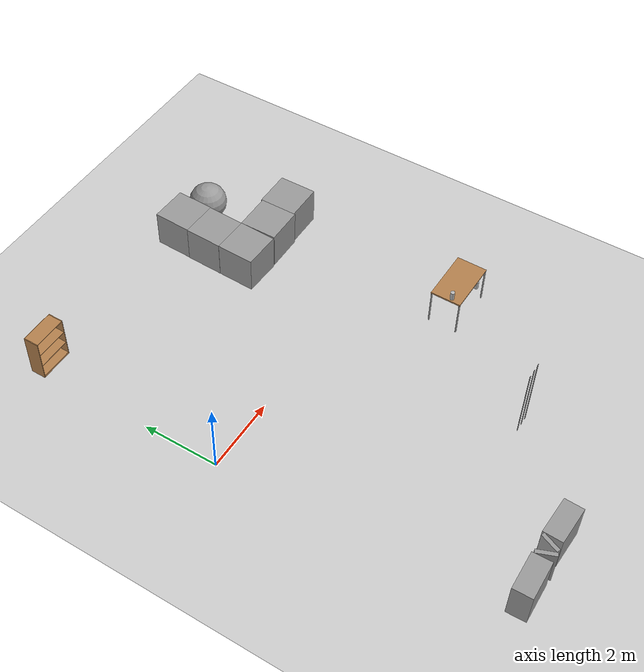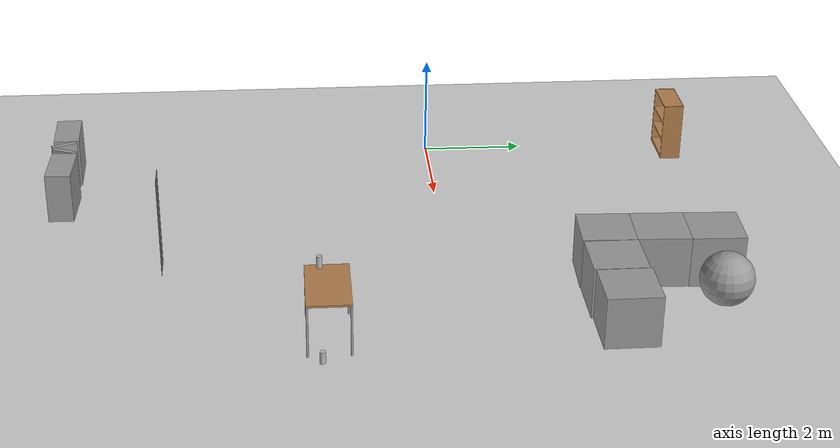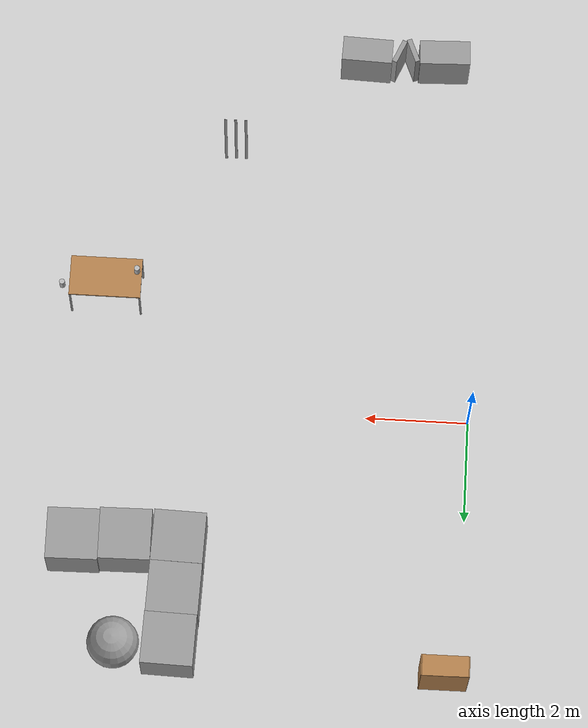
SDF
<sdf version="1.6">
 <world name="default">
  <model name="ground_plane">
   <static>1</static>
   <link name="link">
    <collision name="collision">
     <geometry><plane><normal>0 0 1</normal><size>100 100</size></plane></geometry>
     <surface><friction><ode><mu>100</mu><mu2>50</mu2></ode></friction></surface>
    </collision>
    <visual name="visual">
     <cast_shadows>0</cast_shadows>
     <geometry><plane><normal>0 0 1</normal><size>100 100</size></plane></geometry>
     <material>
      <script><uri>file://media/materials/scripts/gazebo.material</uri><name>Gazebo/Grey</name></script>
     </material>
    </visual>
   </link>
  </model>
  <model name="unit_box_0_2">
   <pose>5.46329 2.82899 0.499995 -1e-05 -0 -0.031279</pose>
   <link name="link">
    <inertial>
     <mass>1</mass>
     <inertia>
      <ixx>0.166667</ixx>
      <ixy>0</ixy>
      <ixz>0</ixz>
      <iyy>0.166667</iyy>
      <iyz>0</iyz>
      <izz>0.166667</izz>
     </inertia>
    </inertial>
    <collision name="collision"><geometry><box><size>1 1 1</size></box></geometry></collision>
    <visual name="visual">
     <geometry><box><size>1 1 1</size></box></geometry>
     <material>
      <script><name>Gazebo/Grey</name><uri>file://media/materials/scripts/gazebo.material</uri></script>
     </material>
    </visual>
   </link>
  </model>
  <model name="unit_box_0_3">
   <pose>5.53381 4.82824 0.499995 -1e-05 0 -0.032223</pose>
   <link name="link">
    <inertial>
     <mass>1</mass>
     <inertia>
      <ixx>0.166667</ixx>
      <ixy>0</ixy>
      <ixz>0</ixz>
      <iyy>0.166667</iyy>
      <iyz>0</iyz>
      <izz>0.166667</izz>
     </inertia>
    </inertial>
    <collision name="collision"><geometry><box><size>1 1 1</size></box></geometry></collision>
    <visual name="visual">
     <geometry><box><size>1 1 1</size></box></geometry>
     <material>
      <script><name>Gazebo/Grey</name><uri>file://media/materials/scripts/gazebo.material</uri></script>
     </material>
    </visual>
   </link>
  </model>
  <model name="unit_box_0_4">
   <pose>5.49328 3.82901 0.499995 1e-05 -0 -0.032214</pose>
   <link name="link">
    <inertial>
     <mass>1</mass>
     <inertia>
      <ixx>0.166667</ixx>
      <ixy>0</ixy>
      <ixz>0</ixz>
      <iyy>0.166667</iyy>
      <iyz>0</iyz>
      <izz>0.166667</izz>
     </inertia>
    </inertial>
    <collision name="collision"><geometry><box><size>1 1 1</size></box></geometry></collision>
    <visual name="visual">
     <geometry><box><size>1 1 1</size></box></geometry>
     <material>
      <script><name>Gazebo/Grey</name><uri>file://media/materials/scripts/gazebo.material</uri></script>
     </material>
    </visual>
   </link>
  </model>
  <model name="unit_box_0_5">
   <pose>6.48296 2.82872 0.5 0 -0 0.008783</pose>
   <link name="link">
    <inertial>
     <mass>1</mass>
     <inertia>
      <ixx>0.166667</ixx>
      <ixy>0</ixy>
      <ixz>0</ixz>
      <iyy>0.166667</iyy>
      <iyz>0</iyz>
      <izz>0.166667</izz>
     </inertia>
    </inertial>
    <collision name="collision"><geometry><box><size>1 1 1</size></box></geometry></collision>
    <visual name="visual">
     <geometry><box><size>1 1 1</size></box></geometry>
     <material>
      <script><name>Gazebo/Grey</name><uri>file://media/materials/scripts/gazebo.material</uri></script>
     </material>
    </visual>
   </link>
  </model>
  <model name="unit_box_0_6">
   <pose>7.48259 2.8746 0.494019 0.001468 0.000371 0.008756</pose>
   <link name="link">
    <inertial>
     <mass>1</mass>
     <inertia>
      <ixx>0.166667</ixx>
      <ixy>0</ixy>
      <ixz>0</ixz>
      <iyy>0.166667</iyy>
      <iyz>0</iyz>
      <izz>0.166667</izz>
     </inertia>
    </inertial>
    <collision name="collision"><geometry><box><size>1 1 1</size></box></geometry></collision>
    <visual name="visual">
     <geometry><box><size>1 1 1</size></box></geometry>
     <material>
      <script><name>Gazebo/Grey</name><uri>file://media/materials/scripts/gazebo.material</uri></script>
     </material>
    </visual>
   </link>
  </model>
  <model name="bookshelf_1_clone_1">
   <static>1</static>
   <link name="link">
    <inertial><mass>1</mass></inertial>
    <collision name="back">
     <pose>0 0.005 0.6 0 -0 0</pose>
     <geometry><box><size>0.9 0.01 1.2</size></box></geometry>
    </collision>
    <visual name="visual1">
     <pose>0 0.005 0.6 0 -0 0</pose>
     <geometry><box><size>0.9 0.01 1.2</size></box></geometry>
     <material>
      <script><uri>file://media/materials/scripts/gazebo.material</uri><name>Gazebo/Wood</name></script>
     </material>
    </visual>
    <collision name="left_side">
     <pose>0.45 -0.195 0.6 0 -0 0</pose>
     <geometry><box><size>0.02 0.4 1.2</size></box></geometry>
    </collision>
    <visual name="visual2">
     <pose>0.45 -0.195 0.6 0 -0 0</pose>
     <geometry><box><size>0.02 0.4 1.2</size></box></geometry>
     <material>
      <script><uri>file://media/materials/scripts/gazebo.material</uri><name>Gazebo/Wood</name></script>
     </material>
    </visual>
    <collision name="right_side">
     <pose>-0.45 -0.195 0.6 0 -0 0</pose>
     <geometry><box><size>0.02 0.4 1.2</size></box></geometry>
    </collision>
    <visual name="visual3">
     <pose>-0.45 -0.195 0.6 0 -0 0</pose>
     <geometry><box><size>0.02 0.4 1.2</size></box></geometry>
     <material>
      <script><uri>file://media/materials/scripts/gazebo.material</uri><name>Gazebo/Wood</name></script>
     </material>
    </visual>
    <collision name="bottom">
     <pose>0 -0.195 0.03 0 -0 0</pose>
     <geometry><box><size>0.88 0.4 0.06</size></box></geometry>
    </collision>
    <visual name="visual4">
     <pose>0 -0.195 0.03 0 -0 0</pose>
     <geometry><box><size>0.88 0.4 0.06</size></box></geometry>
     <material>
      <script><uri>file://media/materials/scripts/gazebo.material</uri><name>Gazebo/Wood</name></script>
     </material>
    </visual>
    <collision name="top">
     <pose>0 -0.195 1.19 0 -0 0</pose>
     <geometry><box><size>0.88 0.4 0.02</size></box></geometry>
    </collision>
    <visual name="visual5">
     <pose>0 -0.195 1.19 0 -0 0</pose>
     <geometry><box><size>0.88 0.4 0.02</size></box></geometry>
     <material>
      <script><uri>file://media/materials/scripts/gazebo.material</uri><name>Gazebo/Wood</name></script>
     </material>
    </visual>
    <collision name="low_shelf">
     <pose>0 -0.195 0.43 0 -0 0</pose>
     <geometry><box><size>0.88 0.4 0.02</size></box></geometry>
    </collision>
    <visual name="visual6">
     <pose>0 -0.195 0.43 0 -0 0</pose>
     <geometry><box><size>0.88 0.4 0.02</size></box></geometry>
     <material>
      <script><uri>file://media/materials/scripts/gazebo.material</uri><name>Gazebo/Wood</name></script>
     </material>
    </visual>
    <collision name="high_shelf">
     <pose>0 -0.195 0.8 0 -0 0</pose>
     <geometry><box><size>0.88 0.4 0.02</size></box></geometry>
    </collision>
    <visual name="visual7">
     <pose>0 -0.195 0.8 0 -0 0</pose>
     <geometry><box><size>0.88 0.4 0.02</size></box></geometry>
     <material>
      <script><uri>file://media/materials/scripts/gazebo.material</uri><name>Gazebo/Wood</name></script>
     </material>
    </visual>
   </link>
   <pose>0.313567 5.32284 0 0 -0 0</pose>
  </model>
  <model name="beer_clone_1">
   <link name="link">
    <pose>0 0 0.115 0 -0 0</pose>
    <inertial>
     <mass>0.39</mass>
     <inertia><ixx>0.00058</ixx><ixy>0</ixy><ixz>0</ixz><iyy>0.00058</iyy><iyz>0</iyz><izz>0.00019</izz></inertia>
    </inertial>
    <collision name="collision">
     <geometry><cylinder><radius>0.055</radius><length>0.23</length></cylinder></geometry>
    </collision>
    <visual name="visual">
     <geometry><cylinder><radius>0.055</radius><length>0.23</length></cylinder></geometry>
     <material>
      <script>
       <uri>model://beer/materials/scripts</uri>
       <uri>model://beer/materials/textures</uri>
       <name>Beer/Diffuse</name>
      </script>
     </material>
    </visual>
   </link>
   <pose>8.10942 -2.46184 0.230065 3.14088 0.000964 2.77717</pose>
  </model>
  <model name="beer_clone_2">
   <link name="link">
    <pose>0 0 0.115 0 -0 0</pose>
    <inertial>
     <mass>0.39</mass>
     <inertia><ixx>0.00058</ixx><ixy>0</ixy><ixz>0</ixz><iyy>0.00058</iyy><iyz>0</iyz><izz>0.00019</izz></inertia>
    </inertial>
    <collision name="collision">
     <geometry><cylinder><radius>0.055</radius><length>0.23</length></cylinder></geometry>
    </collision>
    <visual name="visual">
     <geometry><cylinder><radius>0.055</radius><length>0.23</length></cylinder></geometry>
     <material>
      <script>
       <uri>model://beer/materials/scripts</uri>
       <uri>model://beer/materials/textures</uri>
       <name>Beer/Diffuse</name>
      </script>
     </material>
    </visual>
   </link>
   <pose>6.58813 -2.4604 0.990994 -0.005496 -0.003168 1.25338</pose>
  </model>
  <model name="unit_sphere_0">
   <pose>6.60391 4.83797 0.5 0.012288 -0 0</pose>
   <link name="link">
    <inertial>
     <mass>1</mass>
     <inertia><ixx>0.1</ixx><ixy>0</ixy><ixz>0</ixz><iyy>0.1</iyy><iyz>0</iyz><izz>0.1</izz></inertia>
    </inertial>
    <collision name="collision"><geometry><sphere><radius>0.5</radius></sphere></geometry></collision>
    <visual name="visual">
     <geometry><sphere><radius>0.5</radius></sphere></geometry>
     <material>
      <script><name>Gazebo/Grey</name><uri>file://media/materials/scripts/gazebo.material</uri></script>
     </material>
    </visual>
   </link>
  </model>
  <model name="boxDaBox_clone">
   <link name="link">
    <inertial>
     <mass>1</mass>
     <inertia>
      <ixx>0.166667</ixx>
      <ixy>0</ixy>
      <ixz>0</ixz>
      <iyy>0.166667</iyy>
      <iyz>0</iyz>
      <izz>0.166667</izz>
     </inertia>
    </inertial>
    <visual name="visual">
     <geometry><box><size>0.0525 0.01 2</size></box></geometry>
     <material>
      <script><name>Gazebo/Grey</name><uri>file://media/materials/scripts/gazebo.material</uri></script>
      <ambient>0.3 0.3 0.3 1</ambient>
      <diffuse>0.7 0.7 0.7 1</diffuse>
      <specular>0.01 0.01 0.01 1</specular>
      <emissive>0 0 0 1</emissive>
      <shader type="vertex"><normal_map>__default__</normal_map></shader>
     </material>
    </visual>
    <collision name="collision">
     <laser_retro>1</laser_retro>
     <geometry><box><size>0.0525 0.01 2</size></box></geometry>
     <surface>
      <friction>
       <ode><mu>1</mu><mu2>1</mu2><fdir1>0 0 0</fdir1><slip1>0</slip1><slip2>0</slip2></ode>
       <torsional>
        <coefficient>1</coefficient>
        <patch_radius>0</patch_radius>
        <surface_radius>0</surface_radius>
        <use_patch_radius>1</use_patch_radius>
        <ode><slip>0</slip></ode>
       </torsional>
      </friction>
      <bounce><restitution_coefficient>0</restitution_coefficient><threshold>1e+06</threshold></bounce>
      <contact>
       <collide_without_contact>0</collide_without_contact>
       <collide_without_contact_bitmask>1</collide_without_contact_bitmask>
       <collide_bitmask>1</collide_bitmask>
       <ode>
        <soft_cfm>0</soft_cfm>
        <soft_erp>0.2</soft_erp>
        <kp>1e+13</kp>
        <kd>1</kd>
        <max_vel>0.01</max_vel>
        <min_depth>0</min_depth>
       </ode>
       <bullet>
        <split_impulse>1</split_impulse>
        <split_impulse_penetration_threshold>-0.01</split_impulse_penetration_threshold>
        <soft_cfm>0</soft_cfm>
        <soft_erp>0.2</soft_erp>
        <kp>1e+13</kp>
        <kd>1</kd>
       </bullet>
      </contact>
     </surface>
    </collision>
   </link>
   <static>0</static>
   <pose>5.01246 -5.34665 1 -2e-06 3e-06 -0.000638</pose>
  </model>
  <model name="boxDaBox_0_clone">
   <link name="link">
    <inertial>
     <mass>1</mass>
     <inertia>
      <ixx>0.166667</ixx>
      <ixy>0</ixy>
      <ixz>0</ixz>
      <iyy>0.166667</iyy>
      <iyz>0</iyz>
      <izz>0.166667</izz>
     </inertia>
    </inertial>
    <visual name="visual">
     <geometry><box><size>0.0525 0.01 2</size></box></geometry>
     <material>
      <script><name>Gazebo/Grey</name><uri>file://media/materials/scripts/gazebo.material</uri></script>
      <ambient>0.3 0.3 0.3 1</ambient>
      <diffuse>0.7 0.7 0.7 1</diffuse>
      <specular>0.01 0.01 0.01 1</specular>
      <emissive>0 0 0 1</emissive>
      <shader type="vertex"><normal_map>__default__</normal_map></shader>
     </material>
    </visual>
    <collision name="collision">
     <laser_retro>1</laser_retro>
     <geometry><box><size>0.0525 0.01 2</size></box></geometry>
     <surface>
      <friction>
       <ode><mu>1</mu><mu2>1</mu2><fdir1>0 0 0</fdir1><slip1>0</slip1><slip2>0</slip2></ode>
       <torsional>
        <coefficient>1</coefficient>
        <patch_radius>0</patch_radius>
        <surface_radius>0</surface_radius>
        <use_patch_radius>1</use_patch_radius>
        <ode><slip>0</slip></ode>
       </torsional>
      </friction>
      <bounce><restitution_coefficient>0</restitution_coefficient><threshold>1e+06</threshold></bounce>
      <contact>
       <collide_without_contact>0</collide_without_contact>
       <collide_without_contact_bitmask>1</collide_without_contact_bitmask>
       <collide_bitmask>1</collide_bitmask>
       <ode>
        <soft_cfm>0</soft_cfm>
        <soft_erp>0.2</soft_erp>
        <kp>1e+13</kp>
        <kd>1</kd>
        <max_vel>0.01</max_vel>
        <min_depth>0</min_depth>
       </ode>
       <bullet>
        <split_impulse>1</split_impulse>
        <split_impulse_penetration_threshold>-0.01</split_impulse_penetration_threshold>
        <soft_cfm>0</soft_cfm>
        <soft_erp>0.2</soft_erp>
        <kp>1e+13</kp>
        <kd>1</kd>
       </bullet>
      </contact>
     </surface>
    </collision>
   </link>
   <static>0</static>
   <pose>4.81245 -5.34998 1 -9e-06 -4e-06 -0.001365</pose>
  </model>
  <model name="table_0_0">
   <link name="link">
    <inertial>
     <inertia><ixx>1</ixx><ixy>0</ixy><ixz>0</ixz><iyy>1</iyy><iyz>0</iyz><izz>1</izz></inertia>
     <mass>1</mass>
    </inertial>
    <visual name="visual1">
     <pose>0 0 1 0 -0 0</pose>
     <geometry><box><size>1.4 0.8 0.04</size></box></geometry>
     <material>
      <script><uri>file://media/materials/scripts/gazebo.material</uri><name>Gazebo/Wood</name></script>
      <ambient>1 1 1 1</ambient>
      <diffuse>1 1 1 1</diffuse>
      <specular>0.2 0.2 0.2 1</specular>
      <emissive>0 0 0 1</emissive>
      <shader type="vertex"><normal_map>__default__</normal_map></shader>
     </material>
    </visual>
    <visual name="front_left_leg">
     <pose>0.68 0.38 0.5 0 -0 0</pose>
     <geometry><cylinder><radius>0.02</radius><length>1</length></cylinder></geometry>
     <material>
      <script><uri>file://media/materials/scripts/gazebo.material</uri><name>Gazebo/Grey</name></script>
      <ambient>0.3 0.3 0.3 1</ambient>
      <diffuse>0.7 0.7 0.7 1</diffuse>
      <specular>0.01 0.01 0.01 1</specular>
      <emissive>0 0 0 1</emissive>
      <shader type="vertex"><normal_map>__default__</normal_map></shader>
     </material>
    </visual>
    <visual name="front_right_leg">
     <pose>0.68 -0.38 0.5 0 -0 0</pose>
     <geometry><cylinder><radius>0.02</radius><length>1</length></cylinder></geometry>
     <material>
      <script><uri>file://media/materials/scripts/gazebo.material</uri><name>Gazebo/Grey</name></script>
      <ambient>0.3 0.3 0.3 1</ambient>
      <diffuse>0.7 0.7 0.7 1</diffuse>
      <specular>0.01 0.01 0.01 1</specular>
      <emissive>0 0 0 1</emissive>
      <shader type="vertex"><normal_map>__default__</normal_map></shader>
     </material>
    </visual>
    <visual name="back_right_leg">
     <pose>-0.68 -0.38 0.5 0 -0 0</pose>
     <geometry><cylinder><radius>0.02</radius><length>1</length></cylinder></geometry>
     <material>
      <script><uri>file://media/materials/scripts/gazebo.material</uri><name>Gazebo/Grey</name></script>
      <ambient>0.3 0.3 0.3 1</ambient>
      <diffuse>0.7 0.7 0.7 1</diffuse>
      <specular>0.01 0.01 0.01 1</specular>
      <emissive>0 0 0 1</emissive>
      <shader type="vertex"><normal_map>__default__</normal_map></shader>
     </material>
    </visual>
    <visual name="back_left_leg">
     <pose>-0.68 0.38 0.5 0 -0 0</pose>
     <geometry><cylinder><radius>0.02</radius><length>1</length></cylinder></geometry>
     <material>
      <script><uri>file://media/materials/scripts/gazebo.material</uri><name>Gazebo/Grey</name></script>
      <ambient>0.3 0.3 0.3 1</ambient>
      <diffuse>0.7 0.7 0.7 1</diffuse>
      <specular>0.01 0.01 0.01 1</specular>
      <emissive>0 0 0 1</emissive>
      <shader type="vertex"><normal_map>__default__</normal_map></shader>
     </material>
    </visual>
    <collision name="surface">
     <pose>0 0 1 0 -0 0</pose>
     <geometry><box><size>1.5 0.8 0.03</size></box></geometry>
     <surface>
      <friction>
       <ode><mu>0.6</mu><mu2>0.6</mu2><fdir1>0 0 0</fdir1><slip1>0</slip1><slip2>0</slip2></ode>
       <torsional>
        <coefficient>1</coefficient>
        <patch_radius>0</patch_radius>
        <surface_radius>0</surface_radius>
        <use_patch_radius>1</use_patch_radius>
        <ode><slip>0</slip></ode>
       </torsional>
      </friction>
      <bounce><restitution_coefficient>0</restitution_coefficient><threshold>1e+06</threshold></bounce>
      <contact>
       <collide_without_contact>0</collide_without_contact>
       <collide_without_contact_bitmask>1</collide_without_contact_bitmask>
       <collide_bitmask>1</collide_bitmask>
       <ode>
        <soft_cfm>0</soft_cfm>
        <soft_erp>0.2</soft_erp>
        <kp>1e+13</kp>
        <kd>1</kd>
        <max_vel>0.01</max_vel>
        <min_depth>0</min_depth>
       </ode>
       <bullet>
        <split_impulse>1</split_impulse>
        <split_impulse_penetration_threshold>-0.01</split_impulse_penetration_threshold>
        <soft_cfm>0</soft_cfm>
        <soft_erp>0.2</soft_erp>
        <kp>1e+13</kp>
        <kd>1</kd>
       </bullet>
      </contact>
     </surface>
    </collision>
    <collision name="front_left_leg">
     <pose>0.68 0.38 0.5 0 -0 0</pose>
     <geometry><cylinder><radius>0.02</radius><length>1</length></cylinder></geometry>
     <surface>
      <friction>
       <ode><mu>1</mu><mu2>1</mu2><fdir1>0 0 0</fdir1><slip1>0</slip1><slip2>0</slip2></ode>
       <torsional>
        <coefficient>1</coefficient>
        <patch_radius>0</patch_radius>
        <surface_radius>0</surface_radius>
        <use_patch_radius>1</use_patch_radius>
        <ode><slip>0</slip></ode>
       </torsional>
      </friction>
      <bounce><restitution_coefficient>0</restitution_coefficient><threshold>1e+06</threshold></bounce>
      <contact>
       <collide_without_contact>0</collide_without_contact>
       <collide_without_contact_bitmask>1</collide_without_contact_bitmask>
       <collide_bitmask>1</collide_bitmask>
       <ode>
        <soft_cfm>0</soft_cfm>
        <soft_erp>0.2</soft_erp>
        <kp>1e+13</kp>
        <kd>1</kd>
        <max_vel>0.01</max_vel>
        <min_depth>0</min_depth>
       </ode>
       <bullet>
        <split_impulse>1</split_impulse>
        <split_impulse_penetration_threshold>-0.01</split_impulse_penetration_threshold>
        <soft_cfm>0</soft_cfm>
        <soft_erp>0.2</soft_erp>
        <kp>1e+13</kp>
        <kd>1</kd>
       </bullet>
      </contact>
     </surface>
    </collision>
    <collision name="front_right_leg">
     <pose>0.68 -0.38 0.5 0 -0 0</pose>
     <geometry><cylinder><radius>0.02</radius><length>1</length></cylinder></geometry>
     <surface>
      <friction>
       <ode><mu>1</mu><mu2>1</mu2><fdir1>0 0 0</fdir1><slip1>0</slip1><slip2>0</slip2></ode>
       <torsional>
        <coefficient>1</coefficient>
        <patch_radius>0</patch_radius>
        <surface_radius>0</surface_radius>
        <use_patch_radius>1</use_patch_radius>
        <ode><slip>0</slip></ode>
       </torsional>
      </friction>
      <bounce><restitution_coefficient>0</restitution_coefficient><threshold>1e+06</threshold></bounce>
      <contact>
       <collide_without_contact>0</collide_without_contact>
       <collide_without_contact_bitmask>1</collide_without_contact_bitmask>
       <collide_bitmask>1</collide_bitmask>
       <ode>
        <soft_cfm>0</soft_cfm>
        <soft_erp>0.2</soft_erp>
        <kp>1e+13</kp>
        <kd>1</kd>
        <max_vel>0.01</max_vel>
        <min_depth>0</min_depth>
       </ode>
       <bullet>
        <split_impulse>1</split_impulse>
        <split_impulse_penetration_threshold>-0.01</split_impulse_penetration_threshold>
        <soft_cfm>0</soft_cfm>
        <soft_erp>0.2</soft_erp>
        <kp>1e+13</kp>
        <kd>1</kd>
       </bullet>
      </contact>
     </surface>
    </collision>
    <collision name="back_right_leg">
     <pose>-0.68 -0.38 0.5 0 -0 0</pose>
     <geometry><cylinder><radius>0.02</radius><length>1</length></cylinder></geometry>
     <surface>
      <friction>
       <ode><mu>1</mu><mu2>1</mu2><fdir1>0 0 0</fdir1><slip1>0</slip1><slip2>0</slip2></ode>
       <torsional>
        <coefficient>1</coefficient>
        <patch_radius>0</patch_radius>
        <surface_radius>0</surface_radius>
        <use_patch_radius>1</use_patch_radius>
        <ode><slip>0</slip></ode>
       </torsional>
      </friction>
      <bounce><restitution_coefficient>0</restitution_coefficient><threshold>1e+06</threshold></bounce>
      <contact>
       <collide_without_contact>0</collide_without_contact>
       <collide_without_contact_bitmask>1</collide_without_contact_bitmask>
       <collide_bitmask>1</collide_bitmask>
       <ode>
        <soft_cfm>0</soft_cfm>
        <soft_erp>0.2</soft_erp>
        <kp>1e+13</kp>
        <kd>1</kd>
        <max_vel>0.01</max_vel>
        <min_depth>0</min_depth>
       </ode>
       <bullet>
        <split_impulse>1</split_impulse>
        <split_impulse_penetration_threshold>-0.01</split_impulse_penetration_threshold>
        <soft_cfm>0</soft_cfm>
        <soft_erp>0.2</soft_erp>
        <kp>1e+13</kp>
        <kd>1</kd>
       </bullet>
      </contact>
     </surface>
    </collision>
    <collision name="back_left_leg">
     <pose>-0.68 0.38 0.5 0 -0 0</pose>
     <geometry><cylinder><radius>0.02</radius><length>1</length></cylinder></geometry>
     <surface>
      <friction>
       <ode><mu>1</mu><mu2>1</mu2><fdir1>0 0 0</fdir1><slip1>0</slip1><slip2>0</slip2></ode>
       <torsional>
        <coefficient>1</coefficient>
        <patch_radius>0</patch_radius>
        <surface_radius>0</surface_radius>
        <use_patch_radius>1</use_patch_radius>
        <ode><slip>0</slip></ode>
       </torsional>
      </friction>
      <bounce><restitution_coefficient>0</restitution_coefficient><threshold>1e+06</threshold></bounce>
      <contact>
       <collide_without_contact>0</collide_without_contact>
       <collide_without_contact_bitmask>1</collide_without_contact_bitmask>
       <collide_bitmask>1</collide_bitmask>
       <ode>
        <soft_cfm>0</soft_cfm>
        <soft_erp>0.2</soft_erp>
        <kp>1e+13</kp>
        <kd>1</kd>
        <max_vel>0.01</max_vel>
        <min_depth>0</min_depth>
       </ode>
       <bullet>
        <split_impulse>1</split_impulse>
        <split_impulse_penetration_threshold>-0.01</split_impulse_penetration_threshold>
        <soft_cfm>0</soft_cfm>
        <soft_erp>0.2</soft_erp>
        <kp>1e+13</kp>
        <kd>1</kd>
       </bullet>
      </contact>
     </surface>
    </collision>
   </link>
   <static>0</static>
   <pose>7.20299 -2.33132 -0.020231 0.001226 -0.005908 -0.003202</pose>
  </model>
  <model name="boxDaBox_0_clone_clone">
   <link name="link">
    <inertial>
     <mass>1</mass>
     <inertia>
      <ixx>0.166667</ixx>
      <ixy>0</ixy>
      <ixz>0</ixz>
      <iyy>0.166667</iyy>
      <iyz>0</iyz>
      <izz>0.166667</izz>
     </inertia>
    </inertial>
    <visual name="visual">
     <geometry><box><size>0.0525 0.01 2</size></box></geometry>
     <material>
      <script><name>Gazebo/Grey</name><uri>file://media/materials/scripts/gazebo.material</uri></script>
      <ambient>0.3 0.3 0.3 1</ambient>
      <diffuse>0.7 0.7 0.7 1</diffuse>
      <specular>0.01 0.01 0.01 1</specular>
      <emissive>0 0 0 1</emissive>
      <shader type="vertex"><normal_map>__default__</normal_map></shader>
     </material>
    </visual>
    <collision name="collision">
     <laser_retro>1</laser_retro>
     <geometry><box><size>0.0525 0.01 2</size></box></geometry>
     <surface>
      <friction>
       <ode><mu>1</mu><mu2>1</mu2><fdir1>0 0 0</fdir1><slip1>0</slip1><slip2>0</slip2></ode>
       <torsional>
        <coefficient>1</coefficient>
        <patch_radius>0</patch_radius>
        <surface_radius>0</surface_radius>
        <use_patch_radius>1</use_patch_radius>
        <ode><slip>0</slip></ode>
       </torsional>
      </friction>
      <bounce><restitution_coefficient>0</restitution_coefficient><threshold>1e+06</threshold></bounce>
      <contact>
       <collide_without_contact>0</collide_without_contact>
       <collide_without_contact_bitmask>1</collide_without_contact_bitmask>
       <collide_bitmask>1</collide_bitmask>
       <ode>
        <soft_cfm>0</soft_cfm>
        <soft_erp>0.2</soft_erp>
        <kp>1e+13</kp>
        <kd>1</kd>
        <max_vel>0.01</max_vel>
        <min_depth>0</min_depth>
       </ode>
       <bullet>
        <split_impulse>1</split_impulse>
        <split_impulse_penetration_threshold>-0.01</split_impulse_penetration_threshold>
        <soft_cfm>0</soft_cfm>
        <soft_erp>0.2</soft_erp>
        <kp>1e+13</kp>
        <kd>1</kd>
       </bullet>
      </contact>
     </surface>
    </collision>
   </link>
   <static>0</static>
   <pose>4.61243 -5.34993 1 2e-06 8e-06 -0.000602</pose>
  </model>
  <model name="unit_box_0_5_clone">
   <link name="link">
    <inertial>
     <mass>1</mass>
     <inertia>
      <ixx>0.166667</ixx>
      <ixy>0</ixy>
      <ixz>0</ixz>
      <iyy>0.166667</iyy>
      <iyz>0</iyz>
      <izz>0.166667</izz>
     </inertia>
    </inertial>
    <visual name="visual">
     <geometry><box><size>1 0.5 1</size></box></geometry>
     <material>
      <script><name>Gazebo/Grey</name><uri>file://media/materials/scripts/gazebo.material</uri></script>
      <shader type="vertex"><normal_map>__default__</normal_map></shader>
      <ambient>0.3 0.3 0.3 1</ambient>
      <diffuse>0.7 0.7 0.7 1</diffuse>
      <specular>0.01 0.01 0.01 1</specular>
      <emissive>0 0 0 1</emissive>
     </material>
    </visual>
    <collision name="collision">
     <geometry><box><size>1 0.5 1</size></box></geometry>
     <surface>
      <friction>
       <ode><mu>1</mu><mu2>1</mu2><fdir1>0 0 0</fdir1><slip1>0</slip1><slip2>0</slip2></ode>
       <torsional>
        <coefficient>1</coefficient>
        <patch_radius>0</patch_radius>
        <surface_radius>0</surface_radius>
        <use_patch_radius>1</use_patch_radius>
        <ode><slip>0</slip></ode>
       </torsional>
      </friction>
      <bounce><restitution_coefficient>0</restitution_coefficient><threshold>1e+06</threshold></bounce>
      <contact>
       <collide_without_contact>0</collide_without_contact>
       <collide_without_contact_bitmask>1</collide_without_contact_bitmask>
       <collide_bitmask>1</collide_bitmask>
       <ode>
        <soft_cfm>0</soft_cfm>
        <soft_erp>0.2</soft_erp>
        <kp>1e+13</kp>
        <kd>1</kd>
        <max_vel>0.01</max_vel>
        <min_depth>0</min_depth>
       </ode>
       <bullet>
        <split_impulse>1</split_impulse>
        <split_impulse_penetration_threshold>-0.01</split_impulse_penetration_threshold>
        <soft_cfm>0</soft_cfm>
        <soft_erp>0.2</soft_erp>
        <kp>1e+13</kp>
        <kd>1</kd>
       </bullet>
      </contact>
     </surface>
    </collision>
   </link>
   <static>0</static>
   <pose>2.28758 -7.41977 0.499997 0 -7e-06 -0.040824</pose>
  </model>
  <model name="unit_box_0_5_clone_clone">
   <link name="link">
    <inertial>
     <mass>1</mass>
     <inertia>
      <ixx>0.166667</ixx>
      <ixy>0</ixy>
      <ixz>0</ixz>
      <iyy>0.166667</iyy>
      <iyz>0</iyz>
      <izz>0.166667</izz>
     </inertia>
    </inertial>
    <visual name="visual">
     <geometry><box><size>1 0.5 1</size></box></geometry>
     <material>
      <script><name>Gazebo/Grey</name><uri>file://media/materials/scripts/gazebo.material</uri></script>
      <shader type="vertex"><normal_map>__default__</normal_map></shader>
      <ambient>0.3 0.3 0.3 1</ambient>
      <diffuse>0.7 0.7 0.7 1</diffuse>
      <specular>0.01 0.01 0.01 1</specular>
      <emissive>0 0 0 1</emissive>
     </material>
    </visual>
    <collision name="collision">
     <geometry><box><size>1 0.5 1</size></box></geometry>
     <surface>
      <friction>
       <ode><mu>1</mu><mu2>1</mu2><fdir1>0 0 0</fdir1><slip1>0</slip1><slip2>0</slip2></ode>
       <torsional>
        <coefficient>1</coefficient>
        <patch_radius>0</patch_radius>
        <surface_radius>0</surface_radius>
        <use_patch_radius>1</use_patch_radius>
        <ode><slip>0</slip></ode>
       </torsional>
      </friction>
      <bounce><restitution_coefficient>0</restitution_coefficient><threshold>1e+06</threshold></bounce>
      <contact>
       <collide_without_contact>0</collide_without_contact>
       <collide_without_contact_bitmask>1</collide_without_contact_bitmask>
       <collide_bitmask>1</collide_bitmask>
       <ode>
        <soft_cfm>0</soft_cfm>
        <soft_erp>0.2</soft_erp>
        <kp>1e+13</kp>
        <kd>1</kd>
        <max_vel>0.01</max_vel>
        <min_depth>0</min_depth>
       </ode>
       <bullet>
        <split_impulse>1</split_impulse>
        <split_impulse_penetration_threshold>-0.01</split_impulse_penetration_threshold>
        <soft_cfm>0</soft_cfm>
        <soft_erp>0.2</soft_erp>
        <kp>1e+13</kp>
        <kd>1</kd>
       </bullet>
      </contact>
     </surface>
    </collision>
   </link>
   <static>0</static>
   <pose>0.738575 -7.43931 0.499997 -0 7e-06 0.028414</pose>
  </model>
  <model name="unit_box_0_5_clone_clone_0">
   <link name="link">
    <inertial>
     <mass>1</mass>
     <inertia>
      <ixx>0.166667</ixx>
      <ixy>0</ixy>
      <ixz>0</ixz>
      <iyy>0.166667</iyy>
      <iyz>0</iyz>
      <izz>0.166667</izz>
     </inertia>
    </inertial>
    <visual name="visual">
     <geometry><box><size>0.5 0.1 1</size></box></geometry>
     <material>
      <script><name>Gazebo/Grey</name><uri>file://media/materials/scripts/gazebo.material</uri></script>
      <shader type="vertex"><normal_map>__default__</normal_map></shader>
      <ambient>0.3 0.3 0.3 1</ambient>
      <diffuse>0.7 0.7 0.7 1</diffuse>
      <specular>0.01 0.01 0.01 1</specular>
      <emissive>0 0 0 1</emissive>
     </material>
    </visual>
    <collision name="collision">
     <geometry><box><size>0.5 0.1 1</size></box></geometry>
     <surface>
      <friction>
       <ode><mu>1</mu><mu2>1</mu2><fdir1>0 0 0</fdir1><slip1>0</slip1><slip2>0</slip2></ode>
       <torsional>
        <coefficient>1</coefficient>
        <patch_radius>0</patch_radius>
        <surface_radius>0</surface_radius>
        <use_patch_radius>1</use_patch_radius>
        <ode><slip>0</slip></ode>
       </torsional>
      </friction>
      <bounce><restitution_coefficient>0</restitution_coefficient><threshold>1e+06</threshold></bounce>
      <contact>
       <collide_without_contact>0</collide_without_contact>
       <collide_without_contact_bitmask>1</collide_without_contact_bitmask>
       <collide_bitmask>1</collide_bitmask>
       <ode>
        <soft_cfm>0</soft_cfm>
        <soft_erp>0.2</soft_erp>
        <kp>1e+13</kp>
        <kd>1</kd>
        <max_vel>0.01</max_vel>
        <min_depth>0</min_depth>
       </ode>
       <bullet>
        <split_impulse>1</split_impulse>
        <split_impulse_penetration_threshold>-0.01</split_impulse_penetration_threshold>
        <soft_cfm>0</soft_cfm>
        <soft_erp>0.2</soft_erp>
        <kp>1e+13</kp>
        <kd>1</kd>
       </bullet>
      </contact>
     </surface>
    </collision>
   </link>
   <static>0</static>
   <pose>1.64694 -7.42087 0.499991 1e-06 1e-06 1.16318</pose>
  </model>
  <model name="unit_box_0_5_clone_clone_0_clone">
   <link name="link">
    <inertial>
     <mass>1</mass>
     <inertia>
      <ixx>0.166667</ixx>
      <ixy>0</ixy>
      <ixz>0</ixz>
      <iyy>0.166667</iyy>
      <iyz>0</iyz>
      <izz>0.166667</izz>
     </inertia>
    </inertial>
    <visual name="visual">
     <geometry><box><size>0.5 0.1 1</size></box></geometry>
     <material>
      <script><name>Gazebo/Grey</name><uri>file://media/materials/scripts/gazebo.material</uri></script>
      <shader type="vertex"><normal_map>__default__</normal_map></shader>
      <ambient>0.3 0.3 0.3 1</ambient>
      <diffuse>0.7 0.7 0.7 1</diffuse>
      <specular>0.01 0.01 0.01 1</specular>
      <emissive>0 0 0 1</emissive>
     </material>
    </visual>
    <collision name="collision">
     <geometry><box><size>0.5 0.1 1</size></box></geometry>
     <surface>
      <friction>
       <ode><mu>1</mu><mu2>1</mu2><fdir1>0 0 0</fdir1><slip1>0</slip1><slip2>0</slip2></ode>
       <torsional>
        <coefficient>1</coefficient>
        <patch_radius>0</patch_radius>
        <surface_radius>0</surface_radius>
        <use_patch_radius>1</use_patch_radius>
        <ode><slip>0</slip></ode>
       </torsional>
      </friction>
      <bounce><restitution_coefficient>0</restitution_coefficient><threshold>1e+06</threshold></bounce>
      <contact>
       <collide_without_contact>0</collide_without_contact>
       <collide_without_contact_bitmask>1</collide_without_contact_bitmask>
       <collide_bitmask>1</collide_bitmask>
       <ode>
        <soft_cfm>0</soft_cfm>
        <soft_erp>0.2</soft_erp>
        <kp>1e+13</kp>
        <kd>1</kd>
        <max_vel>0.01</max_vel>
        <min_depth>0</min_depth>
       </ode>
       <bullet>
        <split_impulse>1</split_impulse>
        <split_impulse_penetration_threshold>-0.01</split_impulse_penetration_threshold>
        <soft_cfm>0</soft_cfm>
        <soft_erp>0.2</soft_erp>
        <kp>1e+13</kp>
        <kd>1</kd>
       </bullet>
      </contact>
     </surface>
    </collision>
   </link>
   <static>0</static>
   <pose>1.37347 -7.45148 0.5 -0 -0 -1.18602</pose>
  </model>
 </world>
</sdf>
